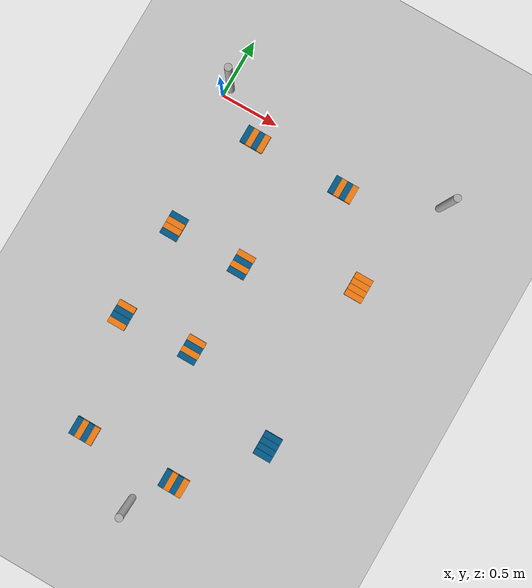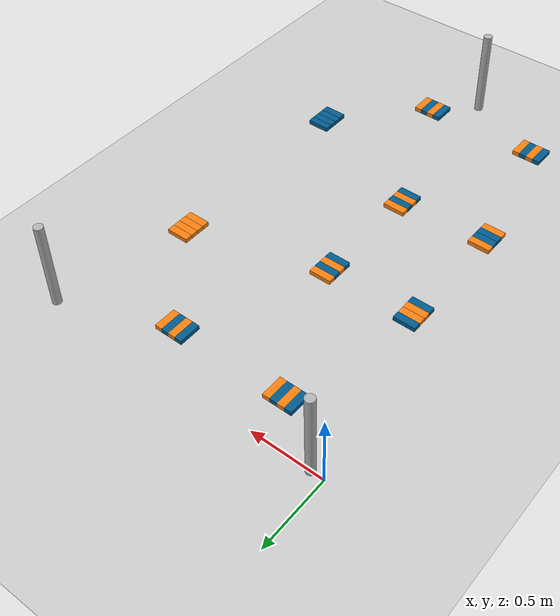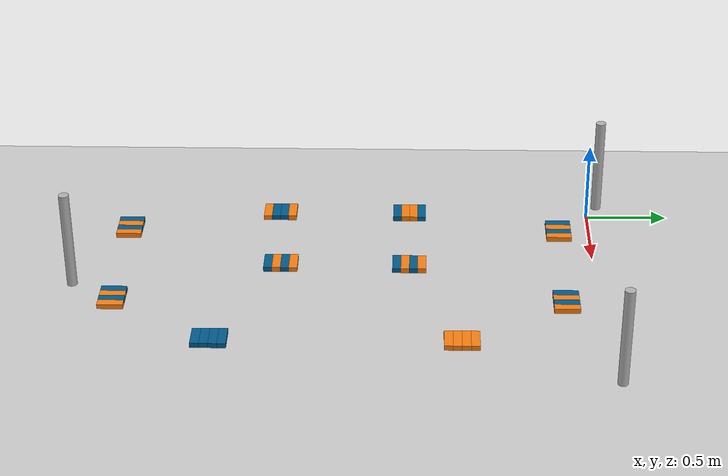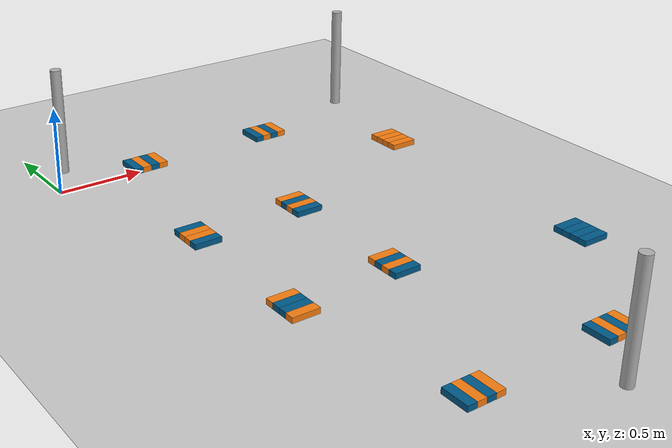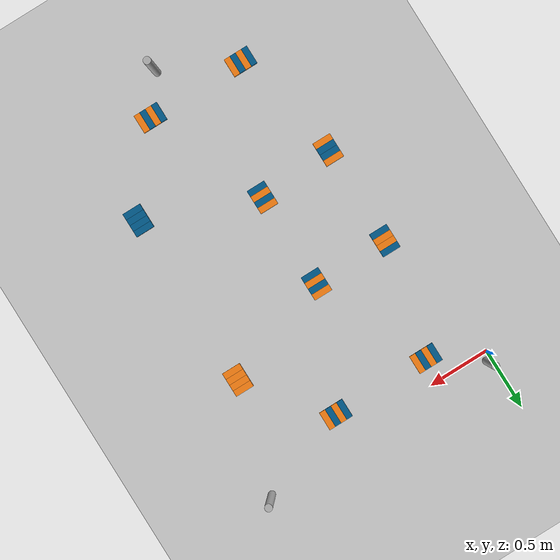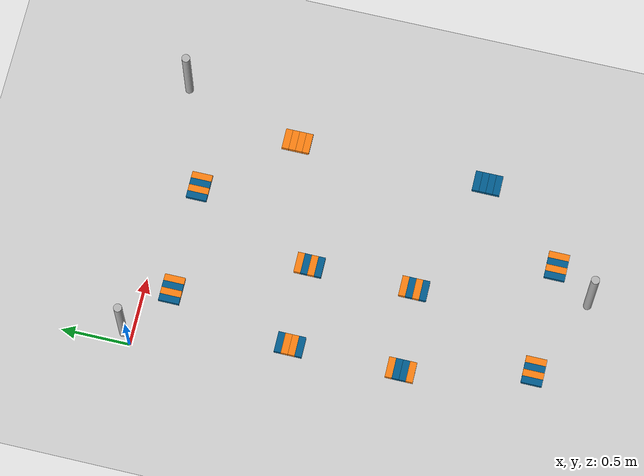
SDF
<sdf version="1.10">
 <world name="empty">
  <scene>
   <shadows>false</shadows>
   <ambient>0.400000006 0.400000006 0.400000006 1</ambient>
   <background>0.699999988 0.699999988 0.699999988 1</background>
  </scene>
  <physics name="1ms" type="ignored">
   <max_step_size>0.001</max_step_size>
   <real_time_factor>1.0</real_time_factor>
   <real_time_update_rate>25</real_time_update_rate>
  </physics>
  <plugin name="gz::sim::systems::Physics" filename="gz-sim-physics-system"/>
  <plugin name="gz::sim::systems::UserCommands" filename="gz-sim-user-commands-system"/>
  <plugin name="gz::sim::systems::SceneBroadcaster" filename="gz-sim-scene-broadcaster-system"/>
  <plugin name="gz::sim::systems::Sensors" filename="gz-sim-sensors-system">
   <render_engine>ogre2</render_engine>
  </plugin>
  <plugin name="gz::sim::systems::Contact" filename="gz-sim-contact-system"/>
  <gravity>0 0 -9.8000000000000007</gravity>
  <magnetic_field>5.5644999999999998e-06 2.2875799999999999e-05 -4.2388400000000002e-05</magnetic_field>
  <atmosphere type="adiabatic"/>
  <model name="ground_plane">
   <static>true</static>
   <link name="link">
    <collision name="collision">
     <geometry><plane><normal>0 0 1</normal><size>100 100</size></plane></geometry>
    </collision>
    <visual name="visual">
     <geometry><plane><normal>0 0 1</normal><size>100 100</size></plane></geometry>
     <material>
      <ambient>0.800000012 0.800000012 0.800000012 1</ambient>
      <diffuse>0.800000012 0.800000012 0.800000012 1</diffuse>
      <specular>0.800000012 0.800000012 0.800000012 1</specular>
     </material>
    </visual>
    <inertial>
     <mass>1</mass>
     <inertia><ixx>1</ixx><ixy>0</ixy><ixz>0</ixz><iyy>1</iyy><iyz>0</iyz><izz>1</izz></inertia>
    </inertial>
   </link>
  </model>
  <include>
   <uri>file:///eurobot_2026/src/shesnar/worlds/support_obstacle_comp/cargoes.sdf</uri>
   <name>all_cargo</name>
  </include>
  <model name="mayak1">
   <pose>1.0 -3.1 0.4 0.0 0.0 0.0</pose>
   <static>true</static>
   <link name="mayak1_link">
    <inertial>
     <inertia><ixx>8.27e-5</ixx><ixy>0</ixy><ixz>0</ixz><iyy>8.27e-5</iyy><iyz>0</iyz><izz>3.564e-5</izz></inertia>
     <mass>5</mass>
    </inertial>
    <collision name="mayak1_collision">
     <geometry><cylinder><radius>0.03</radius><length>0.6</length></cylinder></geometry>
    </collision>
    <visual name="mayak1_visual">
     <geometry><cylinder><radius>0.03</radius><length>0.6</length></cylinder></geometry>
     <material>
      <ambient>0.300000012 0.300000012 0.300000012 1</ambient>
      <diffuse>0.699999988 0.699999988 0.699999988 1</diffuse>
      <specular>1 1 1 1</specular>
     </material>
    </visual>
   </link>
  </model>
  <model name="mayak2">
   <pose>0.05 0.05 0.4 0.0 0.0 0.0</pose>
   <static>true</static>
   <link name="mayak2_link">
    <inertial>
     <inertia><ixx>8.27e-5</ixx><ixy>0</ixy><ixz>0</ixz><iyy>8.27e-5</iyy><iyz>0</iyz><izz>3.564e-5</izz></inertia>
     <mass>5</mass>
    </inertial>
    <collision name="mayak2_collision">
     <geometry><cylinder><radius>0.03</radius><length>0.6</length></cylinder></geometry>
    </collision>
    <visual name="mayak2_visual">
     <geometry><cylinder><radius>0.03</radius><length>0.6</length></cylinder></geometry>
     <material>
      <ambient>0.300000012 0.300000012 0.300000012 1</ambient>
      <diffuse>0.699999988 0.699999988 0.699999988 1</diffuse>
      <specular>1 1 1 1</specular>
     </material>
    </visual>
   </link>
  </model>
  <model name="mayak3">
   <pose>1.95 0.05 0.4 0.0 0.0 0.0</pose>
   <static>true</static>
   <link name="mayak3_link">
    <inertial>
     <inertia><ixx>8.27e-5</ixx><ixy>0</ixy><ixz>0</ixz><iyy>8.27e-5</iyy><iyz>0</iyz><izz>3.564e-5</izz></inertia>
     <mass>5</mass>
    </inertial>
    <collision name="mayak3_collision">
     <geometry><cylinder><radius>0.03</radius><length>0.6</length></cylinder></geometry>
    </collision>
    <visual name="mayak3_visual">
     <geometry><cylinder><radius>0.03</radius><length>0.6</length></cylinder></geometry>
     <material>
      <ambient>0.300000012 0.300000012 0.300000012 1</ambient>
      <diffuse>0.699999988 0.699999988 0.699999988 1</diffuse>
      <specular>1 1 1 1</specular>
     </material>
    </visual>
   </link>
  </model>
  <light name="sun" type="directional">
   <pose>0 0 10 0 0 0</pose>
   <intensity>1</intensity>
   <direction>-0.5 0.10000000000000001 -0.90000000000000002</direction>
   <diffuse>0.800000012 0.800000012 0.800000012 1</diffuse>
   <specular>0.200000003 0.200000003 0.200000003 1</specular>
   <attenuation>
    <range>1000</range>
    <linear>0.01</linear>
    <constant>0.90000000000000002</constant>
    <quadratic>0.001</quadratic>
   </attenuation>
   <spot><inner_angle>0</inner_angle><outer_angle>0</outer_angle><falloff>0</falloff></spot>
  </light>
 </world>
</sdf>

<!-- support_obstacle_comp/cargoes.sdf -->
<sdf version="1.9">
  <model name="all_cargo">
    <model name='group_1'>

      <model name='cargo_1_1'>
        <pose>0.825 -1.192 0.150 0 0 0</pose>
        <link name='grip_link_1_1'>
          <inertial>
            <inertia>
              <ixx>2.98e-4</ixx>
              <ixy>0</ixy>
              <ixz>0</ixz>
              <iyy>4.67e-3</iyy>
              <iyz>0</iyz>
              <izz>4.95e-3</izz>
            </inertia>
            <mass>0.35</mass>
            <pose>0 0 0 0 0 0</pose>
          </inertial>
          <collision name='box_collision_1_1'>
            <geometry>
              <box>
                <size>0.15 0.05 0.03</size>
              </box>
            </geometry>
            <surface>
              <friction>
                <ode/>
              </friction>
              <bounce/>
              <contact/>
            </surface>
          </collision>
          <visual name='box_visual_1_1'>
            <geometry>
              <box>
                <size>0.15 0.05 0.03</size>
              </box>
            </geometry>
            <material>
              <ambient> 0.0 0.357 0.549 1</ambient>
              <diffuse> 0.0 0.357 0.549 1</diffuse>
              <specular>1 1 1 1</specular>
            </material>
          </visual>
          <pose>0 0 0 0 0 0</pose>
          <enable_wind>false</enable_wind>
        </link>
        <static>false</static>
      </model>
      <model name='cargo_1_2'>
        <pose>0.825 -1.142 0.150 0 0 0</pose>
        <link name='grip_link_1_2'>
          <inertial>
            <inertia>
              <ixx>2.98e-4</ixx>
              <ixy>0</ixy>
              <ixz>0</ixz>
              <iyy>4.67e-3</iyy>
              <iyz>0</iyz>
              <izz>4.95e-3</izz>
            </inertia>
            <mass>0.35</mass>
            <pose>0 0 0 0 0 0</pose>
          </inertial>
          <collision name='box_collision_1_2'>
            <geometry>
              <box>
                <size>0.15 0.05 0.03</size>
              </box>
            </geometry>
            <surface>
              <friction>
                <ode/>
              </friction>
              <bounce/>
              <contact/>
            </surface>
          </collision>
          <visual name='box_visual_1_2'>
            <geometry>
              <box>
                <size>0.15 0.05 0.03</size>
              </box>
            </geometry>
            <material>
              <ambient> 0.976 0.498 0.063 1</ambient>
              <diffuse> 0.976 0.498 0.063 1</diffuse>
              <specular>1 1 1 1</specular>
            </material>
          </visual>
          <pose>0 0 0 0 0 0</pose>
          <enable_wind>false</enable_wind>
        </link>
        <static>false</static>
      </model>
      <model name='cargo_1_3'>
        <pose>0.825 -1.092 0.150 0 0 0</pose>
        <link name='grip_link_1_3'>
          <inertial>
            <inertia>
              <ixx>2.98e-4</ixx>
              <ixy>0</ixy>
              <ixz>0</ixz>
              <iyy>4.67e-3</iyy>
              <iyz>0</iyz>
              <izz>4.95e-3</izz>
            </inertia>
            <mass>0.35</mass>
            <pose>0 0 0 0 0 0</pose>
          </inertial>
          <collision name='box_collision_1_3'>
            <geometry>
              <box>
                <size>0.15 0.05 0.03</size>
              </box>
            </geometry>
            <surface>
              <friction>
                <ode/>
              </friction>
              <bounce/>
              <contact/>
            </surface>
          </collision>
          <visual name='box_visual_1_3'>
            <geometry>
              <box>
                <size>0.15 0.05 0.03</size>
              </box>
            </geometry>
            <material>
              <ambient> 0.0 0.357 0.549 1</ambient>
              <diffuse> 0.0 0.357 0.549 1</diffuse>
              <specular>1 1 1 1</specular>
            </material>
          </visual>
          <pose>0 0 0 0 0 0</pose>
          <enable_wind>false</enable_wind>
        </link>
        <static>false</static>
      </model>
      <model name='cargo_1_4'>
        <pose>0.825 -1.042 0.150 0 0 0</pose>
        <link name='grip_link_1_4'>
          <inertial>
            <inertia>
              <ixx>2.98e-4</ixx>
              <ixy>0</ixy>
              <ixz>0</ixz>
              <iyy>4.67e-3</iyy>
              <iyz>0</iyz>
              <izz>4.95e-3</izz>
            </inertia>
            <mass>0.35</mass>
            <pose>0 0 0 0 0 0</pose>
          </inertial>
          <collision name='box_collision_1_4'>
            <geometry>
              <box>
                <size>0.15 0.05 0.03</size>
              </box>
            </geometry>
            <surface>
              <friction>
                <ode/>
              </friction>
              <bounce/>
              <contact/>
            </surface>
          </collision>
          <visual name='box_visual_1_4'>
            <geometry>
              <box>
                <size>0.15 0.05 0.03</size>
              </box>
            </geometry>
            <material>
              <ambient> 0.976 0.498 0.063 1</ambient>
              <diffuse> 0.976 0.498 0.063 1</diffuse>
              <specular>1 1 1 1</specular>
            </material>
          </visual>
          <pose>0 0 0 0 0 0</pose>
          <enable_wind>false</enable_wind>
        </link>
        <static>false</static>
      </model>
    </model>    <model name='group_2'>

      <model name='cargo_2_1'>
        <pose>0.220 -1.195 0.150 0 0 0</pose>
        <link name='grip_link_2_1'>
          <inertial>
            <inertia>
              <ixx>2.98e-4</ixx>
              <ixy>0</ixy>
              <ixz>0</ixz>
              <iyy>4.67e-3</iyy>
              <iyz>0</iyz>
              <izz>4.95e-3</izz>
            </inertia>
            <mass>0.35</mass>
            <pose>0 0 0 0 0 0</pose>
          </inertial>
          <collision name='box_collision_2_1'>
            <geometry>
              <box>
                <size>0.15 0.05 0.03</size>
              </box>
            </geometry>
            <surface>
              <friction>
                <ode/>
              </friction>
              <bounce/>
              <contact/>
            </surface>
          </collision>
          <visual name='box_visual_2_1'>
            <geometry>
              <box>
                <size>0.15 0.05 0.03</size>
              </box>
            </geometry>
            <material>
              <ambient> 0.0 0.357 0.549 1</ambient>
              <diffuse> 0.0 0.357 0.549 1</diffuse>
              <specular>1 1 1 1</specular>
            </material>
          </visual>
          <pose>0 0 0 0 0 0</pose>
          <enable_wind>false</enable_wind>
        </link>
        <static>false</static>
      </model>
      <model name='cargo_2_2'>
        <pose>0.220 -1.145 0.150 0 0 0</pose>
        <link name='grip_link_2_2'>
          <inertial>
            <inertia>
              <ixx>2.98e-4</ixx>
              <ixy>0</ixy>
              <ixz>0</ixz>
              <iyy>4.67e-3</iyy>
              <iyz>0</iyz>
              <izz>4.95e-3</izz>
            </inertia>
            <mass>0.35</mass>
            <pose>0 0 0 0 0 0</pose>
          </inertial>
          <collision name='box_collision_2_2'>
            <geometry>
              <box>
                <size>0.15 0.05 0.03</size>
              </box>
            </geometry>
            <surface>
              <friction>
                <ode/>
              </friction>
              <bounce/>
              <contact/>
            </surface>
          </collision>
          <visual name='box_visual_2_2'>
            <geometry>
              <box>
                <size>0.15 0.05 0.03</size>
              </box>
            </geometry>
            <material>
              <ambient> 0.976 0.498 0.063 1</ambient>
              <diffuse> 0.976 0.498 0.063 1</diffuse>
              <specular>1 1 1 1</specular>
            </material>
          </visual>
          <pose>0 0 0 0 0 0</pose>
          <enable_wind>false</enable_wind>
        </link>
        <static>false</static>
      </model>
      <model name='cargo_2_3'>
        <pose>0.220 -1.095 0.150 0 0 0</pose>
        <link name='grip_link_2_3'>
          <inertial>
            <inertia>
              <ixx>2.98e-4</ixx>
              <ixy>0</ixy>
              <ixz>0</ixz>
              <iyy>4.67e-3</iyy>
              <iyz>0</iyz>
              <izz>4.95e-3</izz>
            </inertia>
            <mass>0.35</mass>
            <pose>0 0 0 0 0 0</pose>
          </inertial>
          <collision name='box_collision_2_3'>
            <geometry>
              <box>
                <size>0.15 0.05 0.03</size>
              </box>
            </geometry>
            <surface>
              <friction>
                <ode/>
              </friction>
              <bounce/>
              <contact/>
            </surface>
          </collision>
          <visual name='box_visual_2_3'>
            <geometry>
              <box>
                <size>0.15 0.05 0.03</size>
              </box>
            </geometry>
            <material>
              <ambient> 0.976 0.498 0.063 1</ambient>
              <diffuse> 0.976 0.498 0.063 1</diffuse>
              <specular>1 1 1 1</specular>
            </material>
          </visual>
          <pose>0 0 0 0 0 0</pose>
          <enable_wind>false</enable_wind>
        </link>
        <static>false</static>
      </model>
      <model name='cargo_2_4'>
        <pose>0.220 -1.045 0.150 0 0 0</pose>
        <link name='grip_link_2_4'>
          <inertial>
            <inertia>
              <ixx>2.98e-4</ixx>
              <ixy>0</ixy>
              <ixz>0</ixz>
              <iyy>4.67e-3</iyy>
              <iyz>0</iyz>
              <izz>4.95e-3</izz>
            </inertia>
            <mass>0.35</mass>
            <pose>0 0 0 0 0 0</pose>
          </inertial>
          <collision name='box_collision_2_4'>
            <geometry>
              <box>
                <size>0.15 0.05 0.03</size>
              </box>
            </geometry>
            <surface>
              <friction>
                <ode/>
              </friction>
              <bounce/>
              <contact/>
            </surface>
          </collision>
          <visual name='box_visual_2_4'>
            <geometry>
              <box>
                <size>0.15 0.05 0.03</size>
              </box>
            </geometry>
            <material>
              <ambient> 0.0 0.357 0.549 1</ambient>
              <diffuse> 0.0 0.357 0.549 1</diffuse>
              <specular>1 1 1 1</specular>
            </material>
          </visual>
          <pose>0 0 0 0 0 0</pose>
          <enable_wind>false</enable_wind>
        </link>
        <static>false</static>
      </model>
    </model>    <model name='group_3'>

      <model name='cargo_3_1'>
        <pose>0.220 -1.995 0.150 0 0 0</pose>
        <link name='grip_link_3_1'>
          <inertial>
            <inertia>
              <ixx>2.98e-4</ixx>
              <ixy>0</ixy>
              <ixz>0</ixz>
              <iyy>4.67e-3</iyy>
              <iyz>0</iyz>
              <izz>4.95e-3</izz>
            </inertia>
            <mass>0.35</mass>
            <pose>0 0 0 0 0 0</pose>
          </inertial>
          <collision name='box_collision_3_1'>
            <geometry>
              <box>
                <size>0.15 0.05 0.03</size>
              </box>
            </geometry>
            <surface>
              <friction>
                <ode/>
              </friction>
              <bounce/>
              <contact/>
            </surface>
          </collision>
          <visual name='box_visual_3_1'>
            <geometry>
              <box>
                <size>0.15 0.05 0.03</size>
              </box>
            </geometry>
            <material>
              <ambient> 0.976 0.498 0.063 1</ambient>
              <diffuse> 0.976 0.498 0.063 1</diffuse>
              <specular>1 1 1 1</specular>
            </material>
          </visual>
          <pose>0 0 0 0 0 0</pose>
          <enable_wind>false</enable_wind>
        </link>
        <static>false</static>
      </model>
      <model name='cargo_3_2'>
        <pose>0.220 -1.945 0.150 0 0 0</pose>
        <link name='grip_link_3_2'>
          <inertial>
            <inertia>
              <ixx>2.98e-4</ixx>
              <ixy>0</ixy>
              <ixz>0</ixz>
              <iyy>4.67e-3</iyy>
              <iyz>0</iyz>
              <izz>4.95e-3</izz>
            </inertia>
            <mass>0.35</mass>
            <pose>0 0 0 0 0 0</pose>
          </inertial>
          <collision name='box_collision_3_2'>
            <geometry>
              <box>
                <size>0.15 0.05 0.03</size>
              </box>
            </geometry>
            <surface>
              <friction>
                <ode/>
              </friction>
              <bounce/>
              <contact/>
            </surface>
          </collision>
          <visual name='box_visual_3_2'>
            <geometry>
              <box>
                <size>0.15 0.05 0.03</size>
              </box>
            </geometry>
            <material>
              <ambient> 0.0 0.357 0.549 1</ambient>
              <diffuse> 0.0 0.357 0.549 1</diffuse>
              <specular>1 1 1 1</specular>
            </material>
          </visual>
          <pose>0 0 0 0 0 0</pose>
          <enable_wind>false</enable_wind>
        </link>
        <static>false</static>
      </model>
      <model name='cargo_3_3'>
        <pose>0.220 -1.895 0.150 0 0 0</pose>
        <link name='grip_link_3_3'>
          <inertial>
            <inertia>
              <ixx>2.98e-4</ixx>
              <ixy>0</ixy>
              <ixz>0</ixz>
              <iyy>4.67e-3</iyy>
              <iyz>0</iyz>
              <izz>4.95e-3</izz>
            </inertia>
            <mass>0.35</mass>
            <pose>0 0 0 0 0 0</pose>
          </inertial>
          <collision name='box_collision_3_3'>
            <geometry>
              <box>
                <size>0.15 0.05 0.03</size>
              </box>
            </geometry>
            <surface>
              <friction>
                <ode/>
              </friction>
              <bounce/>
              <contact/>
            </surface>
          </collision>
          <visual name='box_visual_3_3'>
            <geometry>
              <box>
                <size>0.15 0.05 0.03</size>
              </box>
            </geometry>
            <material>
              <ambient> 0.0 0.357 0.549 1</ambient>
              <diffuse> 0.0 0.357 0.549 1</diffuse>
              <specular>1 1 1 1</specular>
            </material>
          </visual>
          <pose>0 0 0 0 0 0</pose>
          <enable_wind>false</enable_wind>
        </link>
        <static>false</static>
      </model>
      <model name='cargo_3_4'>
        <pose>0.220 -1.845 0.150 0 0 0</pose>
        <link name='grip_link_3_4'>
          <inertial>
            <inertia>
              <ixx>2.98e-4</ixx>
              <ixy>0</ixy>
              <ixz>0</ixz>
              <iyy>4.67e-3</iyy>
              <iyz>0</iyz>
              <izz>4.95e-3</izz>
            </inertia>
            <mass>0.35</mass>
            <pose>0 0 0 0 0 0</pose>
          </inertial>
          <collision name='box_collision_3_4'>
            <geometry>
              <box>
                <size>0.15 0.05 0.03</size>
              </box>
            </geometry>
            <surface>
              <friction>
                <ode/>
              </friction>
              <bounce/>
              <contact/>
            </surface>
          </collision>
          <visual name='box_visual_3_4'>
            <geometry>
              <box>
                <size>0.15 0.05 0.03</size>
              </box>
            </geometry>
            <material>
              <ambient> 0.976 0.498 0.063 1</ambient>
              <diffuse> 0.976 0.498 0.063 1</diffuse>
              <specular>1 1 1 1</specular>
            </material>
          </visual>
          <pose>0 0 0 0 0 0</pose>
          <enable_wind>false</enable_wind>
        </link>
        <static>false</static>
      </model>
    </model>    <model name='group_4'>

      <model name='cargo_4_1'>
        <pose>0.825 -1.955 0.150 0 0 0</pose>
        <link name='grip_link_4_1'>
          <inertial>
            <inertia>
              <ixx>2.98e-4</ixx>
              <ixy>0</ixy>
              <ixz>0</ixz>
              <iyy>4.67e-3</iyy>
              <iyz>0</iyz>
              <izz>4.95e-3</izz>
            </inertia>
            <mass>0.35</mass>
            <pose>0 0 0 0 0 0</pose>
          </inertial>
          <collision name='box_collision_4_1'>
            <geometry>
              <box>
                <size>0.15 0.05 0.03</size>
              </box>
            </geometry>
            <surface>
              <friction>
                <ode/>
              </friction>
              <bounce/>
              <contact/>
            </surface>
          </collision>
          <visual name='box_visual_4_1'>
            <geometry>
              <box>
                <size>0.15 0.05 0.03</size>
              </box>
            </geometry>
            <material>
              <ambient> 0.0 0.357 0.549 1</ambient>
              <diffuse> 0.0 0.357 0.549 1</diffuse>
              <specular>1 1 1 1</specular>
            </material>
          </visual>
          <pose>0 0 0 0 0 0</pose>
          <enable_wind>false</enable_wind>
        </link>
        <static>false</static>
      </model>
      <model name='cargo_4_2'>
        <pose>0.825 -1.905 0.150 0 0 0</pose>
        <link name='grip_link_4_2'>
          <inertial>
            <inertia>
              <ixx>2.98e-4</ixx>
              <ixy>0</ixy>
              <ixz>0</ixz>
              <iyy>4.67e-3</iyy>
              <iyz>0</iyz>
              <izz>4.95e-3</izz>
            </inertia>
            <mass>0.35</mass>
            <pose>0 0 0 0 0 0</pose>
          </inertial>
          <collision name='box_collision_4_2'>
            <geometry>
              <box>
                <size>0.15 0.05 0.03</size>
              </box>
            </geometry>
            <surface>
              <friction>
                <ode/>
              </friction>
              <bounce/>
              <contact/>
            </surface>
          </collision>
          <visual name='box_visual_4_2'>
            <geometry>
              <box>
                <size>0.15 0.05 0.03</size>
              </box>
            </geometry>
            <material>
              <ambient> 0.976 0.498 0.063 1</ambient>
              <diffuse> 0.976 0.498 0.063 1</diffuse>
              <specular>1 1 1 1</specular>
            </material>
          </visual>
          <pose>0 0 0 0 0 0</pose>
          <enable_wind>false</enable_wind>
        </link>
        <static>false</static>
      </model>
      <model name='cargo_4_3'>
        <pose>0.825 -1.855 0.150 0 0 0</pose>
        <link name='grip_link_4_3'>
          <inertial>
            <inertia>
              <ixx>2.98e-4</ixx>
              <ixy>0</ixy>
              <ixz>0</ixz>
              <iyy>4.67e-3</iyy>
              <iyz>0</iyz>
              <izz>4.95e-3</izz>
            </inertia>
            <mass>0.35</mass>
            <pose>0 0 0 0 0 0</pose>
          </inertial>
          <collision name='box_collision_4_3'>
            <geometry>
              <box>
                <size>0.15 0.05 0.03</size>
              </box>
            </geometry>
            <surface>
              <friction>
                <ode/>
              </friction>
              <bounce/>
              <contact/>
            </surface>
          </collision>
          <visual name='box_visual_4_3'>
            <geometry>
              <box>
                <size>0.15 0.05 0.03</size>
              </box>
            </geometry>
            <material>
              <ambient> 0.0 0.357 0.549 1</ambient>
              <diffuse> 0.0 0.357 0.549 1</diffuse>
              <specular>1 1 1 1</specular>
            </material>
          </visual>
          <pose>0 0 0 0 0 0</pose>
          <enable_wind>false</enable_wind>
        </link>
        <static>false</static>
      </model>
      <model name='cargo_4_4'>
        <pose>0.825 -1.805 0.150 0 0 0</pose>
        <link name='grip_link_4_4'>
          <inertial>
            <inertia>
              <ixx>2.98e-4</ixx>
              <ixy>0</ixy>
              <ixz>0</ixz>
              <iyy>4.67e-3</iyy>
              <iyz>0</iyz>
              <izz>4.95e-3</izz>
            </inertia>
            <mass>0.35</mass>
            <pose>0 0 0 0 0 0</pose>
          </inertial>
          <collision name='box_collision_4_4'>
            <geometry>
              <box>
                <size>0.15 0.05 0.03</size>
              </box>
            </geometry>
            <surface>
              <friction>
                <ode/>
              </friction>
              <bounce/>
              <contact/>
            </surface>
          </collision>
          <visual name='box_visual_4_4'>
            <geometry>
              <box>
                <size>0.15 0.05 0.03</size>
              </box>
            </geometry>
            <material>
              <ambient> 0.976 0.498 0.063 1</ambient>
              <diffuse> 0.976 0.498 0.063 1</diffuse>
              <specular>1 1 1 1</specular>
            </material>
          </visual>
          <pose>0 0 0 0 0 0</pose>
          <enable_wind>false</enable_wind>
        </link>
        <static>false</static>
      </model>
    </model>    <model name='group_5'>

      <model name='cargo_5_1'>
        <pose>1.145 -0.210 0.150 0 0 1.57</pose>
        <link name='grip_link_5_1'>
          <inertial>
            <inertia>
              <ixx>2.98e-4</ixx>
              <ixy>0</ixy>
              <ixz>0</ixz>
              <iyy>4.67e-3</iyy>
              <iyz>0</iyz>
              <izz>4.95e-3</izz>
            </inertia>
            <mass>0.35</mass>
            <pose>0 0 0 0 0 0</pose>
          </inertial>
          <collision name='box_collision_5_1'>
            <geometry>
              <box>
                <size>0.15 0.05 0.03</size>
              </box>
            </geometry>
            <surface>
              <friction>
                <ode/>
              </friction>
              <bounce/>
              <contact/>
            </surface>
          </collision>
          <visual name='box_visual_5_1'>
            <geometry>
              <box>
                <size>0.15 0.05 0.03</size>
              </box>
            </geometry>
            <material>
              <ambient> 0.0 0.357 0.549 1</ambient>
              <diffuse> 0.0 0.357 0.549 1</diffuse>
              <specular>1 1 1 1</specular>
            </material>
          </visual>
          <pose>0 0 0 0 0 0</pose>
          <enable_wind>false</enable_wind>
        </link>
        <static>false</static>
      </model>
      <model name='cargo_5_2'>
        <pose>1.195 -0.210 0.150 0 0 1.57</pose>
        <link name='grip_link_5_2'>
          <inertial>
            <inertia>
              <ixx>2.98e-4</ixx>
              <ixy>0</ixy>
              <ixz>0</ixz>
              <iyy>4.67e-3</iyy>
              <iyz>0</iyz>
              <izz>4.95e-3</izz>
            </inertia>
            <mass>0.35</mass>
            <pose>0 0 0 0 0 0</pose>
          </inertial>
          <collision name='box_collision_5_2'>
            <geometry>
              <box>
                <size>0.15 0.05 0.03</size>
              </box>
            </geometry>
            <surface>
              <friction>
                <ode/>
              </friction>
              <bounce/>
              <contact/>
            </surface>
          </collision>
          <visual name='box_visual_5_2'>
            <geometry>
              <box>
                <size>0.15 0.05 0.03</size>
              </box>
            </geometry>
            <material>
              <ambient> 0.976 0.498 0.063 1</ambient>
              <diffuse> 0.976 0.498 0.063 1</diffuse>
              <specular>1 1 1 1</specular>
            </material>
          </visual>
          <pose>0 0 0 0 0 0</pose>
          <enable_wind>false</enable_wind>
        </link>
        <static>false</static>
      </model>
      <model name='cargo_5_3'>
        <pose>1.245 -0.210 0.150 0 0 1.57</pose>
        <link name='grip_link_5_3'>
          <inertial>
            <inertia>
              <ixx>2.98e-4</ixx>
              <ixy>0</ixy>
              <ixz>0</ixz>
              <iyy>4.67e-3</iyy>
              <iyz>0</iyz>
              <izz>4.95e-3</izz>
            </inertia>
            <mass>0.35</mass>
            <pose>0 0 0 0 0 0</pose>
          </inertial>
          <collision name='box_collision_5_3'>
            <geometry>
              <box>
                <size>0.15 0.05 0.03</size>
              </box>
            </geometry>
            <surface>
              <friction>
                <ode/>
              </friction>
              <bounce/>
              <contact/>
            </surface>
          </collision>
          <visual name='box_visual_5_3'>
            <geometry>
              <box>
                <size>0.15 0.05 0.03</size>
              </box>
            </geometry>
            <material>
              <ambient> 0.0 0.357 0.549 1</ambient>
              <diffuse> 0.0 0.357 0.549 1</diffuse>
              <specular>1 1 1 1</specular>
            </material>
          </visual>
          <pose>0 0 0 0 0 0</pose>
          <enable_wind>false</enable_wind>
        </link>
        <static>false</static>
      </model>
      <model name='cargo_5_4'>
        <pose>1.295 -0.210 0.150 0 0 1.57</pose>
        <link name='grip_link_5_4'>
          <inertial>
            <inertia>
              <ixx>2.98e-4</ixx>
              <ixy>0</ixy>
              <ixz>0</ixz>
              <iyy>4.67e-3</iyy>
              <iyz>0</iyz>
              <izz>4.95e-3</izz>
            </inertia>
            <mass>0.35</mass>
            <pose>0 0 0 0 0 0</pose>
          </inertial>
          <collision name='box_collision_5_4'>
            <geometry>
              <box>
                <size>0.15 0.05 0.03</size>
              </box>
            </geometry>
            <surface>
              <friction>
                <ode/>
              </friction>
              <bounce/>
              <contact/>
            </surface>
          </collision>
          <visual name='box_visual_5_4'>
            <geometry>
              <box>
                <size>0.15 0.05 0.03</size>
              </box>
            </geometry>
            <material>
              <ambient> 0.976 0.498 0.063 1</ambient>
              <diffuse> 0.976 0.498 0.063 1</diffuse>
              <specular>1 1 1 1</specular>
            </material>
          </visual>
          <pose>0 0 0 0 0 0</pose>
          <enable_wind>false</enable_wind>
        </link>
        <static>false</static>
      </model>
    </model>    <model name='group_6'>

      <model name='cargo_6_1'>
        <pose>1.145 -2.830 0.150 0 0 1.57</pose>
        <link name='grip_link_6_1'>
          <inertial>
            <inertia>
              <ixx>2.98e-4</ixx>
              <ixy>0</ixy>
              <ixz>0</ixz>
              <iyy>4.67e-3</iyy>
              <iyz>0</iyz>
              <izz>4.95e-3</izz>
            </inertia>
            <mass>0.35</mass>
            <pose>0 0 0 0 0 0</pose>
          </inertial>
          <collision name='box_collision_6_1'>
            <geometry>
              <box>
                <size>0.15 0.05 0.03</size>
              </box>
            </geometry>
            <surface>
              <friction>
                <ode/>
              </friction>
              <bounce/>
              <contact/>
            </surface>
          </collision>
          <visual name='box_visual_6_1'>
            <geometry>
              <box>
                <size>0.15 0.05 0.03</size>
              </box>
            </geometry>
            <material>
              <ambient> 0.0 0.357 0.549 1</ambient>
              <diffuse> 0.0 0.357 0.549 1</diffuse>
              <specular>1 1 1 1</specular>
            </material>
          </visual>
          <pose>0 0 0 0 0 0</pose>
          <enable_wind>false</enable_wind>
        </link>
        <static>false</static>
      </model>
      <model name='cargo_6_2'>
        <pose>1.195 -2.830 0.150 0 0 1.57</pose>
        <link name='grip_link_6_2'>
          <inertial>
            <inertia>
              <ixx>2.98e-4</ixx>
              <ixy>0</ixy>
              <ixz>0</ixz>
              <iyy>4.67e-3</iyy>
              <iyz>0</iyz>
              <izz>4.95e-3</izz>
            </inertia>
            <mass>0.35</mass>
            <pose>0 0 0 0 0 0</pose>
          </inertial>
          <collision name='box_collision_6_2'>
            <geometry>
              <box>
                <size>0.15 0.05 0.03</size>
              </box>
            </geometry>
            <surface>
              <friction>
                <ode/>
              </friction>
              <bounce/>
              <contact/>
            </surface>
          </collision>
          <visual name='box_visual_6_2'>
            <geometry>
              <box>
                <size>0.15 0.05 0.03</size>
              </box>
            </geometry>
            <material>
              <ambient> 0.976 0.498 0.063 1</ambient>
              <diffuse> 0.976 0.498 0.063 1</diffuse>
              <specular>1 1 1 1</specular>
            </material>
          </visual>
          <pose>0 0 0 0 0 0</pose>
          <enable_wind>false</enable_wind>
        </link>
        <static>false</static>
      </model>
      <model name='cargo_6_3'>
        <pose>1.245 -2.830 0.150 0 0 1.57</pose>
        <link name='grip_link_6_3'>
          <inertial>
            <inertia>
              <ixx>2.98e-4</ixx>
              <ixy>0</ixy>
              <ixz>0</ixz>
              <iyy>4.67e-3</iyy>
              <iyz>0</iyz>
              <izz>4.95e-3</izz>
            </inertia>
            <mass>0.35</mass>
            <pose>0 0 0 0 0 0</pose>
          </inertial>
          <collision name='box_collision_6_3'>
            <geometry>
              <box>
                <size>0.15 0.05 0.03</size>
              </box>
            </geometry>
            <surface>
              <friction>
                <ode/>
              </friction>
              <bounce/>
              <contact/>
            </surface>
          </collision>
          <visual name='box_visual_6_3'>
            <geometry>
              <box>
                <size>0.15 0.05 0.03</size>
              </box>
            </geometry>
            <material>
              <ambient> 0.0 0.357 0.549 1</ambient>
              <diffuse> 0.0 0.357 0.549 1</diffuse>
              <specular>1 1 1 1</specular>
            </material>
          </visual>
          <pose>0 0 0 0 0 0</pose>
          <enable_wind>false</enable_wind>
        </link>
        <static>false</static>
      </model>
      <model name='cargo_6_4'>
        <pose>1.295 -2.830 0.150 0 0 1.57</pose>
        <link name='grip_link_6_4'>
          <inertial>
            <inertia>
              <ixx>2.98e-4</ixx>
              <ixy>0</ixy>
              <ixz>0</ixz>
              <iyy>4.67e-3</iyy>
              <iyz>0</iyz>
              <izz>4.95e-3</izz>
            </inertia>
            <mass>0.35</mass>
            <pose>0 0 0 0 0 0</pose>
          </inertial>
          <collision name='box_collision_6_4'>
            <geometry>
              <box>
                <size>0.15 0.05 0.03</size>
              </box>
            </geometry>
            <surface>
              <friction>
                <ode/>
              </friction>
              <bounce/>
              <contact/>
            </surface>
          </collision>
          <visual name='box_visual_6_4'>
            <geometry>
              <box>
                <size>0.15 0.05 0.03</size>
              </box>
            </geometry>
            <material>
              <ambient> 0.976 0.498 0.063 1</ambient>
              <diffuse> 0.976 0.498 0.063 1</diffuse>
              <specular>1 1 1 1</specular>
            </material>
          </visual>
          <pose>0 0 0 0 0 0</pose>
          <enable_wind>false</enable_wind>
        </link>
        <static>false</static>
      </model>
    </model>    <model name='group_7'>

      <model name='cargo_7_1'>
        <pose>0.350 -0.210 0.150 0 0 1.57</pose>
        <link name='grip_link_7_1'>
          <inertial>
            <inertia>
              <ixx>2.98e-4</ixx>
              <ixy>0</ixy>
              <ixz>0</ixz>
              <iyy>4.67e-3</iyy>
              <iyz>0</iyz>
              <izz>4.95e-3</izz>
            </inertia>
            <mass>0.35</mass>
            <pose>0 0 0 0 0 0</pose>
          </inertial>
          <collision name='box_collision_7_1'>
            <geometry>
              <box>
                <size>0.15 0.05 0.03</size>
              </box>
            </geometry>
            <surface>
              <friction>
                <ode/>
              </friction>
              <bounce/>
              <contact/>
            </surface>
          </collision>
          <visual name='box_visual_7_1'>
            <geometry>
              <box>
                <size>0.15 0.05 0.03</size>
              </box>
            </geometry>
            <material>
              <ambient> 0.0 0.357 0.549 1</ambient>
              <diffuse> 0.0 0.357 0.549 1</diffuse>
              <specular>1 1 1 1</specular>
            </material>
          </visual>
          <pose>0 0 0 0 0 0</pose>
          <enable_wind>false</enable_wind>
        </link>
        <static>false</static>
      </model>
      <model name='cargo_7_2'>
        <pose>0.400 -0.210 0.150 0 0 1.57</pose>
        <link name='grip_link_7_2'>
          <inertial>
            <inertia>
              <ixx>2.98e-4</ixx>
              <ixy>0</ixy>
              <ixz>0</ixz>
              <iyy>4.67e-3</iyy>
              <iyz>0</iyz>
              <izz>4.95e-3</izz>
            </inertia>
            <mass>0.35</mass>
            <pose>0 0 0 0 0 0</pose>
          </inertial>
          <collision name='box_collision_7_2'>
            <geometry>
              <box>
                <size>0.15 0.05 0.03</size>
              </box>
            </geometry>
            <surface>
              <friction>
                <ode/>
              </friction>
              <bounce/>
              <contact/>
            </surface>
          </collision>
          <visual name='box_visual_7_2'>
            <geometry>
              <box>
                <size>0.15 0.05 0.03</size>
              </box>
            </geometry>
            <material>
              <ambient> 0.976 0.498 0.063 1</ambient>
              <diffuse> 0.976 0.498 0.063 1</diffuse>
              <specular>1 1 1 1</specular>
            </material>
          </visual>
          <pose>0 0 0 0 0 0</pose>
          <enable_wind>false</enable_wind>
        </link>
        <static>false</static>
      </model>
      <model name='cargo_7_3'>
        <pose>0.450 -0.210 0.150 0 0 1.57</pose>
        <link name='grip_link_7_3'>
          <inertial>
            <inertia>
              <ixx>2.98e-4</ixx>
              <ixy>0</ixy>
              <ixz>0</ixz>
              <iyy>4.67e-3</iyy>
              <iyz>0</iyz>
              <izz>4.95e-3</izz>
            </inertia>
            <mass>0.35</mass>
            <pose>0 0 0 0 0 0</pose>
          </inertial>
          <collision name='box_collision_7_3'>
            <geometry>
              <box>
                <size>0.15 0.05 0.03</size>
              </box>
            </geometry>
            <surface>
              <friction>
                <ode/>
              </friction>
              <bounce/>
              <contact/>
            </surface>
          </collision>
          <visual name='box_visual_7_3'>
            <geometry>
              <box>
                <size>0.15 0.05 0.03</size>
              </box>
            </geometry>
            <material>
              <ambient> 0.0 0.357 0.549 1</ambient>
              <diffuse> 0.0 0.357 0.549 1</diffuse>
              <specular>1 1 1 1</specular>
            </material>
          </visual>
          <pose>0 0 0 0 0 0</pose>
          <enable_wind>false</enable_wind>
        </link>
        <static>false</static>
      </model>
      <model name='cargo_7_4'>
        <pose>0.500 -0.210 0.150 0 0 1.57</pose>
        <link name='grip_link_7_4'>
          <inertial>
            <inertia>
              <ixx>2.98e-4</ixx>
              <ixy>0</ixy>
              <ixz>0</ixz>
              <iyy>4.67e-3</iyy>
              <iyz>0</iyz>
              <izz>4.95e-3</izz>
            </inertia>
            <mass>0.35</mass>
            <pose>0 0 0 0 0 0</pose>
          </inertial>
          <collision name='box_collision_7_4'>
            <geometry>
              <box>
                <size>0.15 0.05 0.03</size>
              </box>
            </geometry>
            <surface>
              <friction>
                <ode/>
              </friction>
              <bounce/>
              <contact/>
            </surface>
          </collision>
          <visual name='box_visual_7_4'>
            <geometry>
              <box>
                <size>0.15 0.05 0.03</size>
              </box>
            </geometry>
            <material>
              <ambient> 0.976 0.498 0.063 1</ambient>
              <diffuse> 0.976 0.498 0.063 1</diffuse>
              <specular>1 1 1 1</specular>
            </material>
          </visual>
          <pose>0 0 0 0 0 0</pose>
          <enable_wind>false</enable_wind>
        </link>
        <static>false</static>
      </model>
    </model>    <model name='group_8'>

      <model name='cargo_8_1'>
        <pose>0.350 -2.830 0.150 0 0 1.57</pose>
        <link name='grip_link_8_1'>
          <inertial>
            <inertia>
              <ixx>2.98e-4</ixx>
              <ixy>0</ixy>
              <ixz>0</ixz>
              <iyy>4.67e-3</iyy>
              <iyz>0</iyz>
              <izz>4.95e-3</izz>
            </inertia>
            <mass>0.35</mass>
            <pose>0 0 0 0 0 0</pose>
          </inertial>
          <collision name='box_collision_8_1'>
            <geometry>
              <box>
                <size>0.15 0.05 0.03</size>
              </box>
            </geometry>
            <surface>
              <friction>
                <ode/>
              </friction>
              <bounce/>
              <contact/>
            </surface>
          </collision>
          <visual name='box_visual_8_1'>
            <geometry>
              <box>
                <size>0.15 0.05 0.03</size>
              </box>
            </geometry>
            <material>
              <ambient> 0.0 0.357 0.549 1</ambient>
              <diffuse> 0.0 0.357 0.549 1</diffuse>
              <specular>1 1 1 1</specular>
            </material>
          </visual>
          <pose>0 0 0 0 0 0</pose>
          <enable_wind>false</enable_wind>
        </link>
        <static>false</static>
      </model>
      <model name='cargo_8_2'>
        <pose>0.400 -2.830 0.150 0 0 1.57</pose>
        <link name='grip_link_8_2'>
          <inertial>
            <inertia>
              <ixx>2.98e-4</ixx>
              <ixy>0</ixy>
              <ixz>0</ixz>
              <iyy>4.67e-3</iyy>
              <iyz>0</iyz>
              <izz>4.95e-3</izz>
            </inertia>
            <mass>0.35</mass>
            <pose>0 0 0 0 0 0</pose>
          </inertial>
          <collision name='box_collision_8_2'>
            <geometry>
              <box>
                <size>0.15 0.05 0.03</size>
              </box>
            </geometry>
            <surface>
              <friction>
                <ode/>
              </friction>
              <bounce/>
              <contact/>
            </surface>
          </collision>
          <visual name='box_visual_8_2'>
            <geometry>
              <box>
                <size>0.15 0.05 0.03</size>
              </box>
            </geometry>
            <material>
              <ambient> 0.976 0.498 0.063 1</ambient>
              <diffuse> 0.976 0.498 0.063 1</diffuse>
              <specular>1 1 1 1</specular>
            </material>
          </visual>
          <pose>0 0 0 0 0 0</pose>
          <enable_wind>false</enable_wind>
        </link>
        <static>false</static>
      </model>
      <model name='cargo_8_3'>
        <pose>0.450 -2.830 0.150 0 0 1.57</pose>
        <link name='grip_link_8_3'>
          <inertial>
            <inertia>
              <ixx>2.98e-4</ixx>
              <ixy>0</ixy>
              <ixz>0</ixz>
              <iyy>4.67e-3</iyy>
              <iyz>0</iyz>
              <izz>4.95e-3</izz>
            </inertia>
            <mass>0.35</mass>
            <pose>0 0 0 0 0 0</pose>
          </inertial>
          <collision name='box_collision_8_3'>
            <geometry>
              <box>
                <size>0.15 0.05 0.03</size>
              </box>
            </geometry>
            <surface>
              <friction>
                <ode/>
              </friction>
              <bounce/>
              <contact/>
            </surface>
          </collision>
          <visual name='box_visual_8_3'>
            <geometry>
              <box>
                <size>0.15 0.05 0.03</size>
              </box>
            </geometry>
            <material>
              <ambient> 0.0 0.357 0.549 1</ambient>
              <diffuse> 0.0 0.357 0.549 1</diffuse>
              <specular>1 1 1 1</specular>
            </material>
          </visual>
          <pose>0 0 0 0 0 0</pose>
          <enable_wind>false</enable_wind>
        </link>
        <static>false</static>
      </model>
      <model name='cargo_8_4'>
        <pose>0.500 -2.830 0.150 0 0 1.57</pose>
        <link name='grip_link_8_4'>
          <inertial>
            <inertia>
              <ixx>2.98e-4</ixx>
              <ixy>0</ixy>
              <ixz>0</ixz>
              <iyy>4.67e-3</iyy>
              <iyz>0</iyz>
              <izz>4.95e-3</izz>
            </inertia>
            <mass>0.35</mass>
            <pose>0 0 0 0 0 0</pose>
          </inertial>
          <collision name='box_collision_8_4'>
            <geometry>
              <box>
                <size>0.15 0.05 0.03</size>
              </box>
            </geometry>
            <surface>
              <friction>
                <ode/>
              </friction>
              <bounce/>
              <contact/>
            </surface>
          </collision>
          <visual name='box_visual_8_4'>
            <geometry>
              <box>
                <size>0.15 0.05 0.03</size>
              </box>
            </geometry>
            <material>
              <ambient> 0.976 0.498 0.063 1</ambient>
              <diffuse> 0.976 0.498 0.063 1</diffuse>
              <specular>1 1 1 1</specular>
            </material>
          </visual>
          <pose>0 0 0 0 0 0</pose>
          <enable_wind>false</enable_wind>
        </link>
        <static>false</static>
      </model>
    </model>    <model name='group_9'>

      <model name='cargo_9_1'>
        <pose>1.700 -0.895 0.200 0 0 0</pose>
        <link name='grip_link_9_1'>
          <inertial>
            <inertia>
              <ixx>2.98e-4</ixx>
              <ixy>0</ixy>
              <ixz>0</ixz>
              <iyy>4.67e-3</iyy>
              <iyz>0</iyz>
              <izz>4.95e-3</izz>
            </inertia>
            <mass>0.35</mass>
            <pose>0 0 0 0 0 0</pose>
          </inertial>
          <collision name='box_collision_9_1'>
            <geometry>
              <box>
                <size>0.15 0.05 0.03</size>
              </box>
            </geometry>
            <surface>
              <friction>
                <ode/>
              </friction>
              <bounce/>
              <contact/>
            </surface>
          </collision>
          <visual name='box_visual_9_1'>
            <geometry>
              <box>
                <size>0.15 0.05 0.03</size>
              </box>
            </geometry>
            <material>
              <ambient> 0.976 0.498 0.063 1</ambient>
              <diffuse> 0.976 0.498 0.063 1</diffuse>
              <specular>1 1 1 1</specular>
            </material>
          </visual>
          <pose>0 0 0 0 0 0</pose>
          <enable_wind>false</enable_wind>
        </link>
        <static>false</static>
      </model>
      <model name='cargo_9_2'>
        <pose>1.700 -0.845 0.200 0 0 0</pose>
        <link name='grip_link_9_2'>
          <inertial>
            <inertia>
              <ixx>2.98e-4</ixx>
              <ixy>0</ixy>
              <ixz>0</ixz>
              <iyy>4.67e-3</iyy>
              <iyz>0</iyz>
              <izz>4.95e-3</izz>
            </inertia>
            <mass>0.35</mass>
            <pose>0 0 0 0 0 0</pose>
          </inertial>
          <collision name='box_collision_9_2'>
            <geometry>
              <box>
                <size>0.15 0.05 0.03</size>
              </box>
            </geometry>
            <surface>
              <friction>
                <ode/>
              </friction>
              <bounce/>
              <contact/>
            </surface>
          </collision>
          <visual name='box_visual_9_2'>
            <geometry>
              <box>
                <size>0.15 0.05 0.03</size>
              </box>
            </geometry>
            <material>
              <ambient> 0.976 0.498 0.063 1</ambient>
              <diffuse> 0.976 0.498 0.063 1</diffuse>
              <specular>1 1 1 1</specular>
            </material>
          </visual>
          <pose>0 0 0 0 0 0</pose>
          <enable_wind>false</enable_wind>
        </link>
        <static>false</static>
      </model>
      <model name='cargo_9_3'>
        <pose>1.700 -0.795 0.200 0 0 0</pose>
        <link name='grip_link_9_3'>
          <inertial>
            <inertia>
              <ixx>2.98e-4</ixx>
              <ixy>0</ixy>
              <ixz>0</ixz>
              <iyy>4.67e-3</iyy>
              <iyz>0</iyz>
              <izz>4.95e-3</izz>
            </inertia>
            <mass>0.35</mass>
            <pose>0 0 0 0 0 0</pose>
          </inertial>
          <collision name='box_collision_9_3'>
            <geometry>
              <box>
                <size>0.15 0.05 0.03</size>
              </box>
            </geometry>
            <surface>
              <friction>
                <ode/>
              </friction>
              <bounce/>
              <contact/>
            </surface>
          </collision>
          <visual name='box_visual_9_3'>
            <geometry>
              <box>
                <size>0.15 0.05 0.03</size>
              </box>
            </geometry>
            <material>
              <ambient> 0.976 0.498 0.063 1</ambient>
              <diffuse> 0.976 0.498 0.063 1</diffuse>
              <specular>1 1 1 1</specular>
            </material>
          </visual>
          <pose>0 0 0 0 0 0</pose>
          <enable_wind>false</enable_wind>
        </link>
        <static>false</static>
      </model>
      <model name='cargo_9_4'>
        <pose>1.700 -0.745 0.200 0 0 0</pose>
        <link name='grip_link_9_4'>
          <inertial>
            <inertia>
              <ixx>2.98e-4</ixx>
              <ixy>0</ixy>
              <ixz>0</ixz>
              <iyy>4.67e-3</iyy>
              <iyz>0</iyz>
              <izz>4.95e-3</izz>
            </inertia>
            <mass>0.35</mass>
            <pose>0 0 0 0 0 0</pose>
          </inertial>
          <collision name='box_collision_9_4'>
            <geometry>
              <box>
                <size>0.15 0.05 0.03</size>
              </box>
            </geometry>
            <surface>
              <friction>
                <ode/>
              </friction>
              <bounce/>
              <contact/>
            </surface>
          </collision>
          <visual name='box_visual_9_4'>
            <geometry>
              <box>
                <size>0.15 0.05 0.03</size>
              </box>
            </geometry>
            <material>
              <ambient> 0.976 0.498 0.063 1</ambient>
              <diffuse> 0.976 0.498 0.063 1</diffuse>
              <specular>1 1 1 1</specular>
            </material>
          </visual>
          <pose>0 0 0 0 0 0</pose>
          <enable_wind>false</enable_wind>
        </link>
        <static>false</static>
      </model>
    </model>    <model name='group_10'>

      <model name='cargo_10_1'>
        <pose>1.700 -2.295 0.200 0 0 0</pose>
        <link name='grip_link_10_1'>
          <inertial>
            <inertia>
              <ixx>2.98e-4</ixx>
              <ixy>0</ixy>
              <ixz>0</ixz>
              <iyy>4.67e-3</iyy>
              <iyz>0</iyz>
              <izz>4.95e-3</izz>
            </inertia>
            <mass>0.35</mass>
            <pose>0 0 0 0 0 0</pose>
          </inertial>
          <collision name='box_collision_10_1'>
            <geometry>
              <box>
                <size>0.15 0.05 0.03</size>
              </box>
            </geometry>
            <surface>
              <friction>
                <ode/>
              </friction>
              <bounce/>
              <contact/>
            </surface>
          </collision>
          <visual name='box_visual_10_1'>
            <geometry>
              <box>
                <size>0.15 0.05 0.03</size>
              </box>
            </geometry>
            <material>
              <ambient> 0.0 0.357 0.549 1</ambient>
              <diffuse> 0.0 0.357 0.549 1</diffuse>
              <specular>1 1 1 1</specular>
            </material>
          </visual>
          <pose>0 0 0 0 0 0</pose>
          <enable_wind>false</enable_wind>
        </link>
        <static>false</static>
      </model>
      <model name='cargo_10_2'>
        <pose>1.700 -2.245 0.200 0 0 0</pose>
        <link name='grip_link_10_2'>
          <inertial>
            <inertia>
              <ixx>2.98e-4</ixx>
              <ixy>0</ixy>
              <ixz>0</ixz>
              <iyy>4.67e-3</iyy>
              <iyz>0</iyz>
              <izz>4.95e-3</izz>
            </inertia>
            <mass>0.35</mass>
            <pose>0 0 0 0 0 0</pose>
          </inertial>
          <collision name='box_collision_10_2'>
            <geometry>
              <box>
                <size>0.15 0.05 0.03</size>
              </box>
            </geometry>
            <surface>
              <friction>
                <ode/>
              </friction>
              <bounce/>
              <contact/>
            </surface>
          </collision>
          <visual name='box_visual_10_2'>
            <geometry>
              <box>
                <size>0.15 0.05 0.03</size>
              </box>
            </geometry>
            <material>
              <ambient> 0.0 0.357 0.549 1</ambient>
              <diffuse> 0.0 0.357 0.549 1</diffuse>
              <specular>1 1 1 1</specular>
            </material>
          </visual>
          <pose>0 0 0 0 0 0</pose>
          <enable_wind>false</enable_wind>
        </link>
        <static>false</static>
      </model>
      <model name='cargo_10_3'>
        <pose>1.700 -2.195 0.200 0 0 0</pose>
        <link name='grip_link_10_3'>
          <inertial>
            <inertia>
              <ixx>2.98e-4</ixx>
              <ixy>0</ixy>
              <ixz>0</ixz>
              <iyy>4.67e-3</iyy>
              <iyz>0</iyz>
              <izz>4.95e-3</izz>
            </inertia>
            <mass>0.35</mass>
            <pose>0 0 0 0 0 0</pose>
          </inertial>
          <collision name='box_collision_10_3'>
            <geometry>
              <box>
                <size>0.15 0.05 0.03</size>
              </box>
            </geometry>
            <surface>
              <friction>
                <ode/>
              </friction>
              <bounce/>
              <contact/>
            </surface>
          </collision>
          <visual name='box_visual_10_3'>
            <geometry>
              <box>
                <size>0.15 0.05 0.03</size>
              </box>
            </geometry>
            <material>
              <ambient> 0.0 0.357 0.549 1</ambient>
              <diffuse> 0.0 0.357 0.549 1</diffuse>
              <specular>1 1 1 1</specular>
            </material>
          </visual>
          <pose>0 0 0 0 0 0</pose>
          <enable_wind>false</enable_wind>
        </link>
        <static>false</static>
      </model>
      <model name='cargo_10_4'>
        <pose>1.700 -2.145 0.200 0 0 0</pose>
        <link name='grip_link_10_4'>
          <inertial>
            <inertia>
              <ixx>2.98e-4</ixx>
              <ixy>0</ixy>
              <ixz>0</ixz>
              <iyy>4.67e-3</iyy>
              <iyz>0</iyz>
              <izz>4.95e-3</izz>
            </inertia>
            <mass>0.35</mass>
            <pose>0 0 0 0 0 0</pose>
          </inertial>
          <collision name='box_collision_10_4'>
            <geometry>
              <box>
                <size>0.15 0.05 0.03</size>
              </box>
            </geometry>
            <surface>
              <friction>
                <ode/>
              </friction>
              <bounce/>
              <contact/>
            </surface>
          </collision>
          <visual name='box_visual_10_4'>
            <geometry>
              <box>
                <size>0.15 0.05 0.03</size>
              </box>
            </geometry>
            <material>
              <ambient> 0.0 0.357 0.549 1</ambient>
              <diffuse> 0.0 0.357 0.549 1</diffuse>
              <specular>1 1 1 1</specular>
            </material>
          </visual>
          <pose>0 0 0 0 0 0</pose>
          <enable_wind>false</enable_wind>
        </link>
        <static>false</static>
      </model>
    </model>
  </model>
</sdf>
